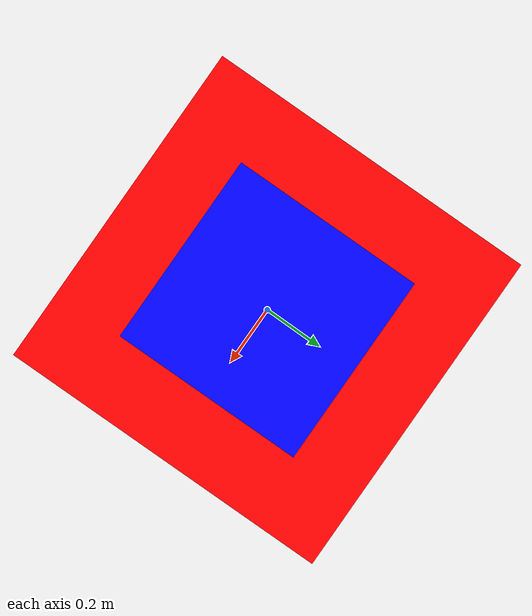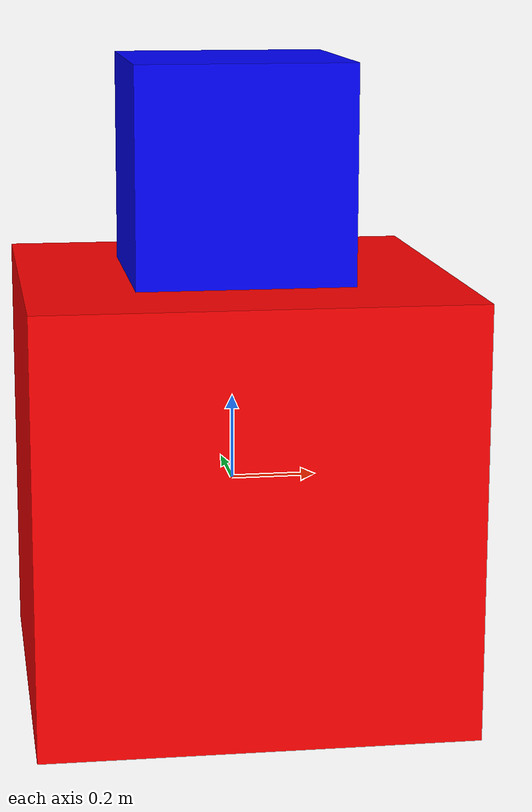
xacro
<?xml version="1.0"?>
<robot name="myfirst" xmlns:xacro="http://www.ros.org/wiki/xacro">
  <link name="base_link">
    <visual>
      <origin xyz="0 0 0" rpy="0 0 0"/>
      <geometry>
        <box size="1 1 1"/>
      </geometry>
      <material name="red">
        <color rgba="1 0 0 1"/>
      </material>
    </visual>
  </link>
  <link name="top_link">
  <visual>
    <origin xyz="0 0 0" rpy="0 0 0"/>
    <geometry>
      <box size="0.5 0.5 0.5"/>
    </geometry>
    <material name="blue">
      <color rgba="0 0 1 1"/>
    </material>
  </visual>
</link>

<joint name="base_to_top" type="revolute">
  <parent link="base_link"/>
  <child link="top_link"/>
  <origin xyz="0 0 0.75" rpy="0 0 0"/>
  <limit lower="-1.57" upper="1.57" effort="10.0" velocity="1.0"/>
  <axis xyz="0 0 1"/>
</joint>
</robot>
